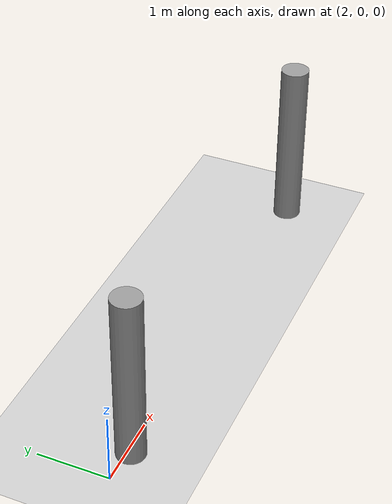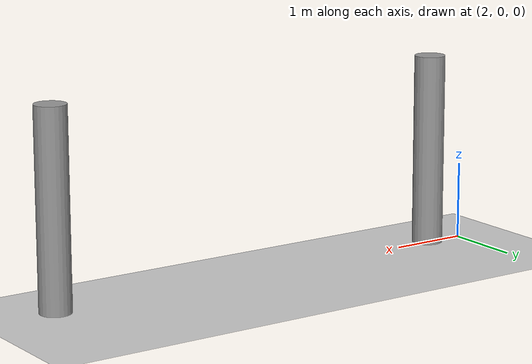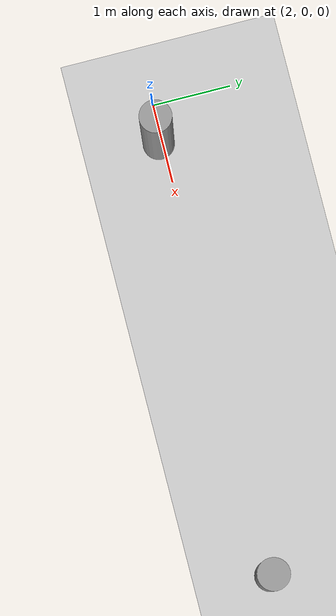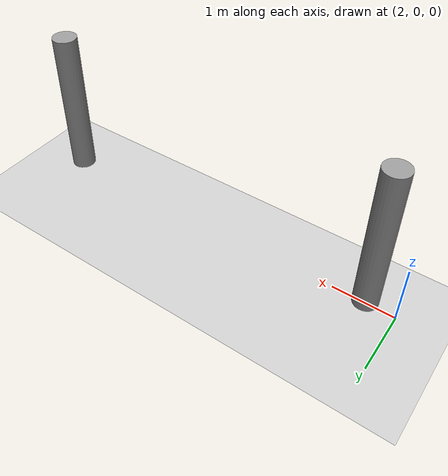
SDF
<sdf version="1.6">
 <world name="default">
  <model name="ground_plane">
   <static>1</static>
   <link name="link">
    <collision name="collision">
     <geometry><plane><normal>0 0 1</normal><size>100 100</size></plane></geometry>
     <surface><friction><ode><mu>100</mu><mu2>50</mu2></ode></friction></surface>
    </collision>
    <visual name="visual">
     <cast_shadows>0</cast_shadows>
     <geometry><plane><normal>0 0 1</normal><size>100 100</size></plane></geometry>
     <material>
      <script><uri>file://media/materials/scripts/gazebo.material</uri><name>Gazebo/Grey</name></script>
     </material>
    </visual>
   </link>
  </model>
  <light name="sun" type="directional">
   <pose>0 0 10 0 -0 0</pose>
   <diffuse>0.8 0.8 0.8 1</diffuse>
   <specular>0.2 0.2 0.2 1</specular>
   <attenuation>
    <range>1000</range>
    <constant>0.9</constant>
    <linear>0.01</linear>
    <quadratic>0.001</quadratic>
   </attenuation>
   <direction>-0.5 0.1 -0.9</direction>
  </light>
  <plugin name="ros_interface_plugin" filename="librotors_gazebo_ros_interface_plugin.so"/>
  <spherical_coordinates>
   <surface_model>EARTH_WGS84</surface_model>
   <latitude_deg>47.3667</latitude_deg>
   <longitude_deg>8.55</longitude_deg>
   <elevation>500</elevation>
   <heading_deg>0</heading_deg>
  </spherical_coordinates>
  <physics name="default_physics" default="0" type="ode">
   <ode>
    <solver>
     <type>quick</type>
     <iters>1000</iters>
     <sor>1.3</sor>
     <use_dynamic_moi_rescaling>0</use_dynamic_moi_rescaling>
    </solver>
    <constraints>
     <cfm>0</cfm>
     <erp>0.2</erp>
     <contact_max_correcting_vel>100</contact_max_correcting_vel>
     <contact_surface_layer>0.001</contact_surface_layer>
    </constraints>
   </ode>
   <max_step_size>0.01</max_step_size>
   <real_time_factor>1</real_time_factor>
   <real_time_update_rate>100</real_time_update_rate>
  </physics>
  <gravity>0 0 -9.8</gravity>
  <magnetic_field>6e-06 2.3e-05 -4.2e-05</magnetic_field>
  <atmosphere type="adiabatic"/>
  <scene><ambient>0.4 0.4 0.4 1</ambient><background>0.7 0.7 0.7 1</background><shadows>1</shadows></scene>
  <model name="cylinder_0">
   <pose>8.07657 -0.046304 0 0 -0 0</pose>
   <link name="Cylinder_0">
    <collision name="Cylinder_0_Collision">
     <geometry><cylinder><radius>0.2</radius><length>2.5</length></cylinder></geometry>
     <pose>0 0 1.25 0 -0 0</pose>
    </collision>
    <visual name="Cylinder_0_Visual">
     <pose>0 0 1.25 0 -0 0</pose>
     <geometry><cylinder><radius>0.2</radius><length>2.5</length></cylinder></geometry>
     <material>
      <script><uri>file://media/materials/scripts/gazebo.material</uri><name>Gazebo/Grey</name></script>
      <ambient>1 1 1 1</ambient>
     </material>
     <meta><layer>0</layer></meta>
    </visual>
    <pose>0 0 0 0 -0 -1.5708</pose>
   </link>
   <static>1</static>
  </model>
  <model name="cylinder_1">
   <pose>2.48952 -0.047742 0 0 -0 0</pose>
   <link name="Cylinder_0">
    <collision name="Cylinder_0_Collision">
     <geometry><cylinder><radius>0.2</radius><length>2.5</length></cylinder></geometry>
     <pose>0 0 1.25 0 -0 0</pose>
    </collision>
    <visual name="Cylinder_0_Visual">
     <pose>0 0 1.25 0 -0 0</pose>
     <geometry><cylinder><radius>0.2</radius><length>2.5</length></cylinder></geometry>
     <material>
      <script><uri>file://media/materials/scripts/gazebo.material</uri><name>Gazebo/Grey</name></script>
      <ambient>1 1 1 1</ambient>
     </material>
     <meta><layer>0</layer></meta>
    </visual>
    <pose>0 0 0 0 -0 -1.5708</pose>
   </link>
   <static>1</static>
  </model>
 </world>
</sdf>
